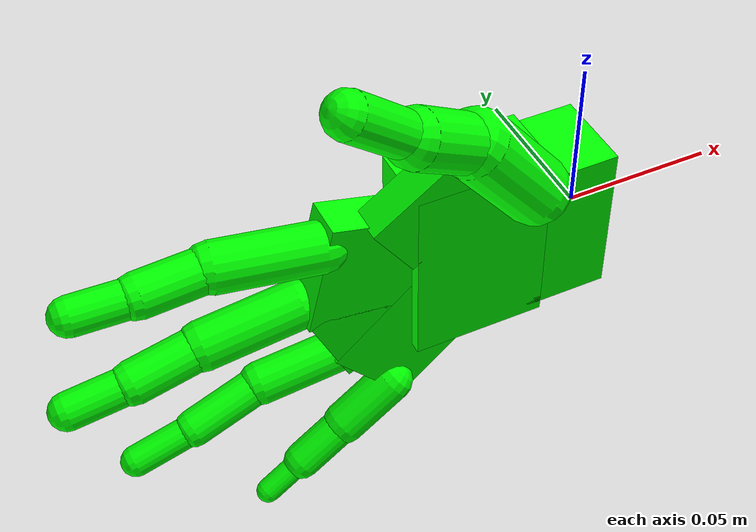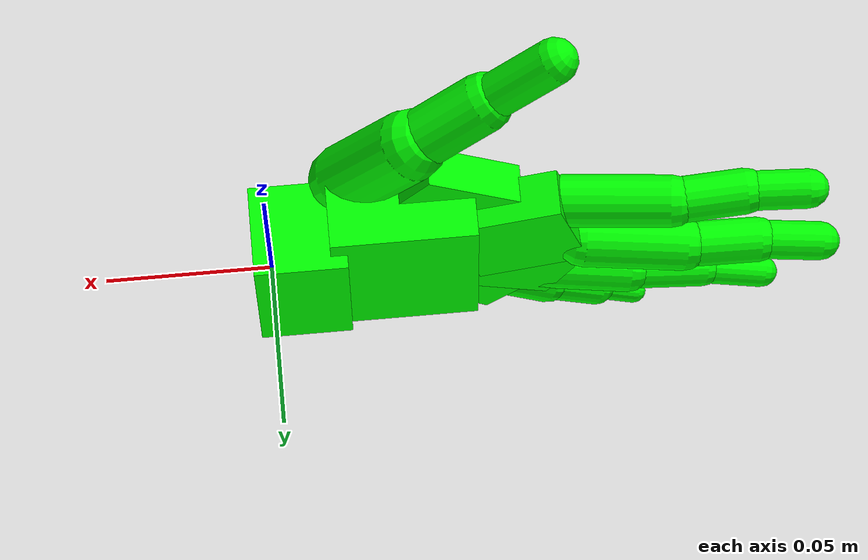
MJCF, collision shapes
<mujoco model="mano">
  <compiler angle="radian" meshdir="meshes/" />

  <default>
    <!-- disable all contacts and use explicit collision pairs -->
    <geom density="800" condim="1" contype="0" conaffinity="0" />
    <!-- with this setting, the response time is around 1s -->
    <position kp="300" dampratio="1.0" inheritrange="1" />
    <joint damping="0.0" armature="1.0" frictionloss="0.0" />
    <site size="0.005" type="sphere" rgba="1 0 0 1" group="3" />
  </default>

  <asset>
    <texture type="skybox" builtin="gradient" rgb1="0.3 0.5 0.7" rgb2="0 0 0" width="512"
      height="3072" />
    <texture type="2d" name="right_groundplane" builtin="checker" mark="edge" rgb1="0.2 0.3 0.4"
      rgb2="0.1 0.2 0.3"
      markrgb="0.8 0.8 0.8" width="300" height="300" />
    <material name="right_groundplane" texture="right_groundplane" texuniform="true"
      texrepeat="5 5"
      reflectance="0.2" />
    <mesh name="right_palm_vis" content_type="model/obj" file="right_meshes/palm_vis.obj" />
    <mesh name="right_palm_collision" content_type="model/obj"
      file="right_meshes/palm_collision.obj" />
    <mesh name="right_index1_vis" content_type="model/obj" file="right_meshes/index1_vis.obj" />
    <mesh name="right_index1_collision" content_type="model/obj"
      file="right_meshes/index1_collision.obj" />
    <mesh name="right_index2_vis" content_type="model/obj" file="right_meshes/index2_vis.obj" />
    <mesh name="right_index2_collision" content_type="model/obj"
      file="right_meshes/index2_collision.obj" />
    <mesh name="right_index3_vis" content_type="model/obj" file="right_meshes/index3_vis.obj" />
    <mesh name="right_index3_collision" content_type="model/obj"
      file="right_meshes/index3_collision.obj" />
    <mesh name="right_middle1_vis" content_type="model/obj" file="right_meshes/middle1_vis.obj" />
    <mesh name="right_middle1_collision" content_type="model/obj"
      file="right_meshes/middle1_collision.obj" />
    <mesh name="right_middle2_vis" content_type="model/obj" file="right_meshes/middle2_vis.obj" />
    <mesh name="right_middle2_collision" content_type="model/obj"
      file="right_meshes/middle2_collision.obj" />
    <mesh name="right_middle3_vis" content_type="model/obj" file="right_meshes/middle3_vis.obj" />
    <mesh name="right_middle3_collision" content_type="model/obj"
      file="right_meshes/middle3_collision.obj" />
    <mesh name="right_pinky1_vis" content_type="model/obj" file="right_meshes/pinky1_vis.obj" />
    <mesh name="right_pinky1_collision" content_type="model/obj"
      file="right_meshes/pinky1_collision.obj" />
    <mesh name="right_pinky2_vis" content_type="model/obj" file="right_meshes/pinky2_vis.obj" />
    <mesh name="right_pinky2_collision" content_type="model/obj"
      file="right_meshes/pinky2_collision.obj" />
    <mesh name="right_pinky3_vis" content_type="model/obj" file="right_meshes/pinky3_vis.obj" />
    <mesh name="right_pinky3_collision" content_type="model/obj"
      file="right_meshes/pinky3_collision.obj" />
    <mesh name="right_ring1_vis" content_type="model/obj" file="right_meshes/ring1_vis.obj" />
    <mesh name="right_ring1_collision" content_type="model/obj"
      file="right_meshes/ring1_collision.obj" />
    <mesh name="right_ring2_vis" content_type="model/obj" file="right_meshes/ring2_vis.obj" />
    <mesh name="right_ring2_collision" content_type="model/obj"
      file="right_meshes/ring2_collision.obj" />
    <mesh name="right_ring3_vis" content_type="model/obj" file="right_meshes/ring3_vis.obj" />
    <mesh name="right_ring3_collision" content_type="model/obj"
      file="right_meshes/ring3_collision.obj" />
    <mesh name="right_thumb1_vis" content_type="model/obj" file="right_meshes/thumb1_vis.obj" />
    <mesh name="right_thumb1_collision" content_type="model/obj"
      file="right_meshes/thumb1_collision.obj" />
    <mesh name="right_thumb2_vis" content_type="model/obj" file="right_meshes/thumb2_vis.obj" />
    <mesh name="right_thumb2_collision" content_type="model/obj"
      file="right_meshes/thumb2_collision.obj" />
    <mesh name="right_thumb3_vis" content_type="model/obj" file="right_meshes/thumb3_vis.obj" />
    <mesh name="right_thumb3_collision" content_type="model/obj"
      file="right_meshes/thumb3_collision.obj" />
  </asset>

  <worldbody>
    <body name="right_palm" gravcomp="1">
      <joint name="right_pos_x" type="slide" axis="1 0 0" range="-3.0 3.0" />
      <joint name="right_pos_y" type="slide" axis="0 1 0" range="-3.0 3.0" />
      <joint name="right_pos_z" type="slide" axis="0 0 1" range="-3.0 3.0" />
      <joint name="right_rot_x" axis="1 0 0" range="-6.28 6.28" />
      <joint name="right_rot_y" axis="0 1 0" range="-6.28 6.28" />
      <joint name="right_rot_z" axis="0 0 1" range="-6.28 6.28" />

      <geom type="mesh" contype="0" conaffinity="0" group="1" density="0" mesh="right_palm_vis" />
      <geom name="collision_hand_right_index_middle_web" type="box" size="0.017 0.007 0.019" pos="-0.075 -0.004 0.008" quat="0.992546 0 0.121869 0" group="3" rgba="0 1 0 1" />
      <geom name="collision_hand_right_palm" type="box" size="0.022 0.012 0.031" pos="-0.04 -0.003 0.003" group="3" rgba="0 1 0 1" />
      <geom name="collision_hand_right_wrist" type="box" size="0.014 0.014 0.026" pos="-0.009 -0.001 0.001" group="3" rgba="0 1 0 1" />
      <!-- thumb-index web: rotated ~100° about Y to align with web midline -->
      <geom name="collision_hand_right_thumb_index_web" type="box" size="0.011 0.006 0.017" pos="-0.056 -0.009 0.028" quat="0.887011 0 0.461749 0" group="3" rgba="0 1 0 1" />
      <!-- ring-pinky web: inner gap near ring base, rotated ~108° about Y -->
      <geom name="collision_hand_right_middle_ring_web" type="box" size="0.014 0.007 0.017" pos="-0.074 -0.004 -0.012" quat="0.838671 0 0.544639 0" group="3" rgba="0 1 0 1" />
      <!-- ring-pinky web: outer gap toward pinky, rotated ~-43° about Y -->
      <geom name="collision_hand_right_ring_pinky_web" type="box" size="0.017 0.005 0.017" pos="-0.064 -0.006 -0.026" quat="0.936672 0 -0.350207 0" group="3" rgba="0 1 0 1" />
      <site name="right_palm" pos="-0.0946604 -0.00147896 -0.00335754" quat="1 1 -1 -1" />

      <body name="right_index1y" pos="-0.0880972 -0.00520036 0.020686"
        quat="0.992949 0.00330198 0.115013 0.0285073">
        <camera name="right_track" pos="-0.868 -0.348 -0.175"
          xyaxes="-0.037 0.999 -0.000 0.011 -0.000 1.000" />
        <inertial pos="0 0 0" mass="0.02" diaginertia="1.6875e-06 1.6875e-06 1.6875e-06" />
        <joint name="right_j_index1y" pos="0 0 0" axis="0 1 0" range="-0.174533 0.174533" />
        <body name="right_index1z">
          <inertial pos="0 0 0" mass="0.02" diaginertia="1.6875e-06 1.6875e-06 1.6875e-06" />
          <joint name="right_j_index1z" pos="0 0 0" axis="0 0 1" range="0 1.5708" />
          <geom quat="0.992949 -0.00330198 -0.115013 -0.0285073" type="mesh" contype="0"
            conaffinity="0" group="1" density="0" mesh="right_index1_vis" />
          <geom name="collision_hand_right_index_1" type="capsule" size="0.008" fromto="6.93889e-18 -1.30104e-18 -4.77049e-18 -0.0320372 0.00585704 -0.00531176" group="3" rgba="0 1 0 1" />
          <body name="right_index2" pos="-0.0320372 0.00585704 -0.00531176"
            quat="0.992687 0.00261912 -0.0813131 -0.0891864">
            <site name="right_index_pip" pos="0 0 0" />
            <inertial pos="0 0 0" mass="0.02" diaginertia="1.6875e-06 1.6875e-06 1.6875e-06" />
            <joint name="right_j_index2" pos="0 0 0" axis="0 0 1" range="0 1.74533" />
            <geom quat="0.997574 0.00206105 -0.0338008 0.0608285" type="mesh" contype="0"
              conaffinity="0" group="1" density="0" mesh="right_index2_vis" />
            <geom name="collision_hand_right_index_2" type="capsule" size="0.007" fromto="1.73472e-18 0 4.33681e-19 -0.0217759 -0.00397366 -0.00161355" group="3" rgba="0 1 0 1" />
            <body name="right_index3" pos="-0.0217759 -0.00397366 -0.00161355"
              quat="0.995276 0.00115242 -0.0364189 0.0899872">
              <site name="right_index_dip" pos="0 0 0" />
              <inertial pos="0 0 0" mass="0.02" diaginertia="1.6875e-06 1.6875e-06 1.6875e-06" />
              <joint name="right_j_index3" pos="0 0 0" axis="0 0 1" range="0 1.39626" />
              <geom quat="0.999568 7.53592e-05 0.00257406 -0.0292638" type="mesh" contype="0"
                conaffinity="0" group="1" density="0" mesh="right_index3_vis" />
              <geom name="collision_hand_right_index_3" type="capsule" size="0.006" fromto="3.46945e-18 -4.33681e-19 5.3027e-18 -0.019 0.002 -5.3027e-18" group="3" rgba="0 1 0 1" />
              <site name="trace_hand_right_index_tip" pos="-0.023106 -0.003671 0" size="0.005"
                rgba="1 0 0 1" />
              <site name="track_hand_right_index_tip" pos="-0.023106 -0.003671 0" size="0.005"
                rgba="0 0 1 1" />
              <site name="right_index_tip" pos="-0.023106 -0.003671 0" quat="1 0 0 0" />
            </body>
          </body>
        </body>
      </body>

      <body name="right_middle1y" pos="-0.0946604 -0.00147896 -0.00335754"
        quat="0.999812 -0.000138377 -0.0177257 0.0078051">
        <inertial pos="0 0 0" mass="0.02" diaginertia="1.6875e-06 1.6875e-06 1.6875e-06" />
        <joint name="right_j_middle1y" pos="0 0 0" axis="0 1 0" range="-0.174533 0.174533" />
        <body name="right_middle1z">
          <inertial pos="0 0 0" mass="0.02" diaginertia="1.6875e-06 1.6875e-06 1.6875e-06" />
          <joint name="right_j_middle1z" pos="0 0 0" axis="0 0 1" range="0 1.5708" />
          <geom quat="0.999812 0.000138377 0.0177257 -0.0078051" type="mesh" contype="0"
            conaffinity="0" group="1" density="0" mesh="right_middle1_vis" />
          <geom name="collision_hand_right_middle_1" type="capsule" size="0.008" fromto="1.04083e-17 -1.30104e-18 2.60209e-18 -0.0313285 0.00235072 -0.00448566" group="3" rgba="0 1 0 1" />
          <body name="right_middle2" pos="-0.0313285 0.00235072 -0.00448566"
            quat="0.99679 0.00152841 -0.0709577 -0.037047">
            <site name="right_middle_pip" pos="0 0 0" />
            <inertial pos="0 0 0" mass="0.02" diaginertia="1.6875e-06 1.6875e-06 1.6875e-06" />
            <joint name="right_j_middle2" pos="0 0 0" axis="0 0 1" range="0 1.74533" />
            <geom quat="0.995635 -0.00260071 0.0886064 0.0292231" type="mesh" contype="0"
              conaffinity="0" group="1" density="0" mesh="right_middle2_vis" />
            <geom name="collision_hand_right_middle_2" type="capsule" size="0.007" fromto="-1.73472e-18 -2.1684e-19 -3.40168e-18 -0.0231278 -0.00261309 0.00016224" group="3" rgba="0 1 0 1" />
            <body name="right_middle3" pos="-0.0231278 -0.00261309 0.00016224"
              quat="0.998412 -8.48904e-06 0.00349023 0.0562232">
              <site name="right_middle_dip" pos="0 0 0" />
              <inertial pos="0 0 0" mass="0.02" diaginertia="1.6875e-06 1.6875e-06 1.6875e-06" />
              <joint name="right_j_middle3" pos="0 0 0" axis="0 0 1" range="0 1.39626" />
              <geom quat="0.996006 0.00229162 0.0851367 -0.0268094" type="mesh" contype="0"
                conaffinity="0" group="1" density="0" mesh="right_middle3_vis" />
              <geom name="collision_hand_right_middle_3" type="capsule" size="0.006" fromto="1.73472e-18 -6.50521e-19 1.11576e-18 -0.02 0.002 -1.11576e-18" group="3" rgba="0 1 0 1" />
              <site name="trace_hand_right_middle_tip" pos="-0.022723 -0.003808 0" size="0.005"
                rgba="1 0 0 1" />
              <site name="track_hand_right_middle_tip" pos="-0.022723 -0.003808 0" size="0.005"
                rgba="0 0 1 1" />
              <site name="right_middle_tip" pos="-0.022723 -0.003808 0" quat="1 0 0 0" />
            </body>
          </body>
        </body>
      </body>

      <body name="right_pinky1y" pos="-0.0687869 -0.00994033 -0.0432093"
        quat="0.959155 -0.0168401 -0.276261 0.0584674">
        <inertial pos="0 0 0" mass="0.02" diaginertia="1.6875e-06 1.6875e-06 1.6875e-06" />
        <joint name="right_j_pinky1y" pos="0 0 0" axis="0 1 0" range="-0.174533 0.174533" />
        <body name="right_pinky1z">
          <inertial pos="0 0 0" mass="0.02" diaginertia="1.6875e-06 1.6875e-06 1.6875e-06" />
          <joint name="right_j_pinky1z" pos="0 0 0" axis="0 0 1" range="0 1.5708" />
          <geom quat="0.959155 0.0168401 0.276261 -0.0584674" type="mesh" contype="0"
            conaffinity="0"
            group="1" density="0" mesh="right_pinky1_vis" />
          <geom name="collision_hand_right_pinky_1" type="capsule" size="0.007" fromto="-3.46945e-18 0 -9.75782e-19 -0.0208927 0.0026189 -0.00153353" group="3" rgba="0 1 0 1" />
          <body name="right_pinky2" pos="-0.0208927 0.0026189 -0.00153353"
            quat="0.997398 -0.00215815 -0.036279 -0.0622646">
            <site name="right_pinky_pip" pos="0 0 0" />
            <inertial pos="0 0 0" mass="0.02" diaginertia="1.6875e-06 1.6875e-06 1.6875e-06" />
            <joint name="right_j_pinky2" pos="0 0 0" axis="0 0 1" range="0 1.74533" />
            <geom quat="0.950241 -0.000456125 0.311514 0.00139136" type="mesh" contype="0"
              conaffinity="0" group="1" density="0" mesh="right_pinky2_vis" />
            <geom name="collision_hand_right_pinky_2" type="capsule" size="0.006" fromto="0 -1.0842e-19 -1.19262e-18 -0.0189021 -0.00074651 0.00106698" group="3" rgba="0 1 0 1" />
            <body name="right_pinky3" pos="-0.0189021 -0.00074651 0.00106698"
              quat="0.999409 0.00047293 0.028183 0.0196984">
              <site name="right_pinky_dip" pos="0 0 0" />
              <inertial pos="0 0 0" mass="0.02" diaginertia="1.6875e-06 1.6875e-06 1.6875e-06" />
              <joint name="right_j_pinky3" pos="0 0 0" axis="0 0 1" range="0 1.39626" />
              <geom quat="0.958485 0.00519187 0.284559 -0.0174879" type="mesh" contype="0"
                conaffinity="0" group="1" density="0" mesh="right_pinky3_vis" />
              <geom name="collision_hand_right_pinky_3" type="capsule" size="0.004" fromto="0 0 1.66533e-18 -0.015 0 -1.66533e-18" group="3" rgba="0 1 0 1" />
              <site name="trace_hand_right_pinky_tip" pos="-0.016054 -0.004705 0" size="0.005"
                rgba="1 0 0 1" />
              <site name="track_hand_right_pinky_tip" pos="-0.016054 -0.004705 0" size="0.005"
                rgba="0 0 1 1" />
              <site name="right_pinky_tip" pos="-0.016054 -0.004705 0" quat="1 0 0 0" />
            </body>
          </body>
        </body>
      </body>

      <body name="right_ring1y" pos="-0.0817355 -0.00395742 -0.0266732"
        quat="0.987327 -0.0036119 -0.157025 0.0227106">
        <inertial pos="0 0 0" mass="0.02" diaginertia="1.6875e-06 1.6875e-06 1.6875e-06" />
        <joint name="right_j_ring1y" pos="0 0 0" axis="0 1 0" range="-0.174533 0.174533" />
        <body name="right_ring1z">
          <inertial pos="0 0 0" mass="0.02" diaginertia="1.6875e-06 1.6875e-06 1.6875e-06" />
          <joint name="right_j_ring1z" pos="0 0 0" axis="0 0 1" range="0 1.5708" />
          <geom quat="0.987327 0.0036119 0.157025 -0.0227106" type="mesh" contype="0"
            conaffinity="0"
            group="1" density="0" mesh="right_ring1_vis" />
          <geom name="collision_hand_right_ring_1" type="capsule" size="0.007" fromto="6.93889e-18 -1.0842e-18 -2.60209e-18 -0.0283738 0.0033752 0.00393707" group="3" rgba="0 1 0 1" />
          <body name="right_ring2" pos="-0.0283738 0.0033752 0.00393707"
            quat="0.995918 -0.000882244 0.0685799 -0.0586873">
            <site name="right_ring_pip" pos="0 0 0" />
            <inertial pos="0 0 0" mass="0.02" diaginertia="1.6875e-06 1.6875e-06 1.6875e-06" />
            <joint name="right_j_ring2" pos="0 0 0" axis="0 0 1" range="0 1.74533" />
            <geom quat="0.995395 -0.00318966 0.0889052 0.0357119" type="mesh" contype="0"
              conaffinity="0" group="1" density="0" mesh="right_ring2_vis" />
            <geom name="collision_hand_right_ring_2" type="capsule" size="0.006" fromto="1.73472e-18 -8.67362e-19 -2.1684e-19 -0.0243171 -0.00343957 -0.0033447" group="3" rgba="0 1 0 1" />
            <body name="right_ring3" pos="-0.0243171 -0.00343957 -0.0033447"
              quat="0.995261 0.000120758 -0.0677846 0.0697243">
              <site name="right_ring_dip" pos="0 0 0" />
              <inertial pos="0 0 0" mass="0.02" diaginertia="1.6875e-06 1.6875e-06 1.6875e-06" />
              <joint name="right_j_ring3" pos="0 0 0" axis="0 0 1" range="0 1.39626" />
              <geom quat="0.98714 0.00532482 0.156183 -0.033655" type="mesh" contype="0"
                conaffinity="0" group="1" density="0" mesh="right_ring3_vis" />
              <geom name="collision_hand_right_ring_3" type="capsule" size="0.005" fromto="1.73472e-18 -6.50521e-19 1.11576e-18 -0.02 0.002 -1.11576e-18" group="3" rgba="0 1 0 1" />
              <site name="trace_hand_right_ring_tip" pos="-0.021453 -0.00486 0" size="0.005"
                rgba="1 0 0 1" />
              <site name="track_hand_right_ring_tip" pos="-0.021453 -0.00486 0" size="0.005"
                rgba="0 0 1 1" />
              <site name="right_ring_tip" pos="-0.021453 -0.00486 0" quat="1 0 0 0" />
            </body>
          </body>
        </body>
      </body>

      <body name="right_thumb1x" pos="-0.0240897 -0.0155223 0.0258128"
        quat="0.751793 0.497092 0.432853 -0.0185415">
        <inertial pos="0 0 0" mass="0.02" diaginertia="1.6875e-06 1.6875e-06 1.6875e-06" />
        <joint name="right_j_thumb1x" pos="0 0 0" axis="1 0 0" range="0 1.0472" />
        <body name="right_thumb1y">
          <inertial pos="0 0 0" mass="0.02" diaginertia="1.6875e-06 1.6875e-06 1.6875e-06" />
          <joint name="right_j_thumb1y" pos="0 0 0" axis="0 1 0" range="-0.261799 1.0472" />
          <body name="right_thumb1z">
            <inertial pos="0 0 0" mass="0.02" diaginertia="1.6875e-06 1.6875e-06 1.6875e-06" />
            <joint name="right_j_thumb1z" pos="0 0 0" axis="0 0 1" range="-1.0472 1.0472" />
            <geom quat="0.751793 -0.497092 -0.432853 0.0185414" type="mesh" contype="0"
              conaffinity="0" group="1" density="0" mesh="right_thumb1_vis" />
            <geom name="collision_hand_right_thumb_1" type="capsule" size="0.011" fromto="0 3.46945e-18 1.73472e-18 -0.0277653 0.0087871 -0.00999011" group="3" rgba="0 1 0 1" />
            <body name="right_thumb2y" pos="-0.0277653 0.0087871 -0.00999011"
              quat="0.975097 -0.00949146 -0.164941 -0.147951">
              <inertial pos="0 0 0" mass="0.02" diaginertia="1.6875e-06 1.6875e-06 1.6875e-06" />
              <joint name="right_j_thumb2y" pos="0 0 0" axis="0 1 0" range="-0.174533 0.174533" />
              <body name="right_thumb2z">
                <site name="right_thumb_pip" pos="0 0 0" />
                <inertial pos="0 0 0" mass="0.02" diaginertia="1.6875e-06 1.6875e-06 1.6875e-06" />
                <joint name="right_j_thumb2z" pos="0 0 0" axis="0 0 1" range="0 1.5708" />
                <geom quat="0.806442 -0.410478 -0.371794 0.207191" type="mesh" contype="0"
                  conaffinity="0" group="1" density="0" mesh="right_thumb2_vis" />
                <geom name="collision_hand_right_thumb_2" type="capsule" size="0.009" fromto="3.46945e-18 0 3.52366e-18 -0.0251906 -0.00996365 0.00050434" group="3" rgba="0 1 0 1" />
                <body name="right_thumb3" pos="-0.0251906 -0.00996365 0.00050434"
                  quat="0.982278 0.000921531 0.00965077 0.187179">
                  <site name="right_thumb_dip" pos="0 0 0" />
                  <inertial pos="0 0 0" mass="0.02" diaginertia="1.6875e-06 1.6875e-06 1.6875e-06" />
                  <joint name="right_j_thumb3" pos="0 0 0" axis="0 0 1" range="0 1.39626" />
                  <geom quat="0.826966 -0.475539 -0.295964 0.0489517" type="mesh" contype="0"
                    conaffinity="0" group="1" density="0" mesh="right_thumb3_vis" />
                  <geom name="collision_hand_right_thumb_3" type="capsule" size="0.007" fromto="-1.73472e-18 0 3.01077e-18 -0.026822 0.004 -3.01077e-18" group="3" rgba="0 1 0 1" />
                  <site name="trace_hand_right_thumb_tip" pos="-0.026822 -0.00565 0" size="0.005"
                    rgba="1 0 0 1" />
                  <site name="track_hand_right_thumb_tip" pos="-0.026822 -0.00565 0" size="0.005"
                    rgba="0 0 1 1" />
                  <site name="right_thumb_tip" pos="-0.026822 -0.00565 0" quat="1 0 0 0" />
                </body>
              </body>
            </body>
          </body>
        </body>
      </body>
    </body>
  </worldbody>

  <actuator>
    <!-- Base joints -->
    <position name="right_pos_x" joint="right_pos_x" kp="1000" />
    <position name="right_pos_y" joint="right_pos_y" kp="1000" />
    <position name="right_pos_z" joint="right_pos_z" kp="1000" />
    <position name="right_rot_x" joint="right_rot_x" kp="1000" />
    <position name="right_rot_y" joint="right_rot_y" kp="1000" />
    <position name="right_rot_z" joint="right_rot_z" kp="1000" />

    <!-- Index finger joints -->
    <position name="right_j_index1y_position" joint="right_j_index1y" />
    <position name="right_j_index1z_position" joint="right_j_index1z" />
    <position name="right_j_index2_position" joint="right_j_index2" />
    <position name="right_j_index3_position" joint="right_j_index3" />

    <!-- Middle finger joints -->
    <position name="right_j_middle1y_position" joint="right_j_middle1y" />
    <position name="right_j_middle1z_position" joint="right_j_middle1z" />
    <position name="right_j_middle2_position" joint="right_j_middle2" />
    <position name="right_j_middle3_position" joint="right_j_middle3" />

    <!-- Pinky finger joints -->
    <position name="right_j_pinky1y_position" joint="right_j_pinky1y" />
    <position name="right_j_pinky1z_position" joint="right_j_pinky1z" />
    <position name="right_j_pinky2_position" joint="right_j_pinky2" />
    <position name="right_j_pinky3_position" joint="right_j_pinky3" />

    <!-- Ring finger joints -->
    <position name="right_j_ring1y_position" joint="right_j_ring1y" />
    <position name="right_j_ring1z_position" joint="right_j_ring1z" />
    <position name="right_j_ring2_position" joint="right_j_ring2" />
    <position name="right_j_ring3_position" joint="right_j_ring3" />

    <!-- Thumb joints -->
    <position name="right_j_thumb1x_position" joint="right_j_thumb1x" />
    <position name="right_j_thumb1y_position" joint="right_j_thumb1y" />
    <position name="right_j_thumb1z_position" joint="right_j_thumb1z" />
    <position name="right_j_thumb2y_position" joint="right_j_thumb2y" />
    <position name="right_j_thumb2z_position" joint="right_j_thumb2z" />
    <position name="right_j_thumb3_position" joint="right_j_thumb3" />
  </actuator>
</mujoco>
